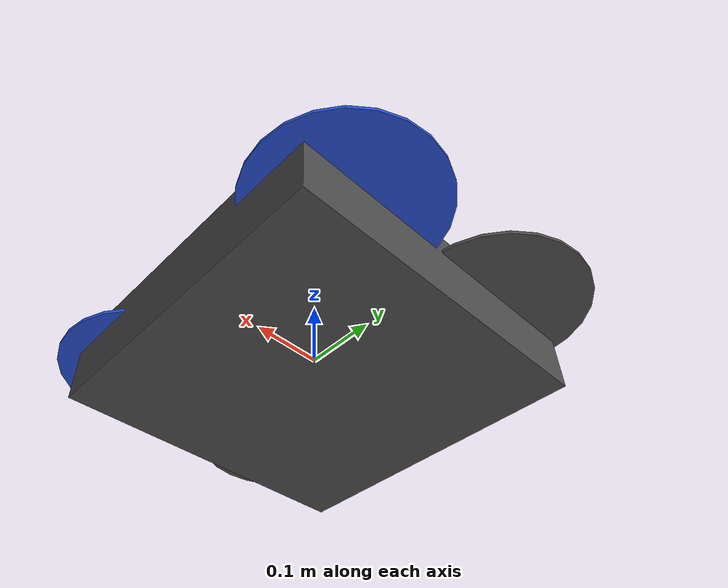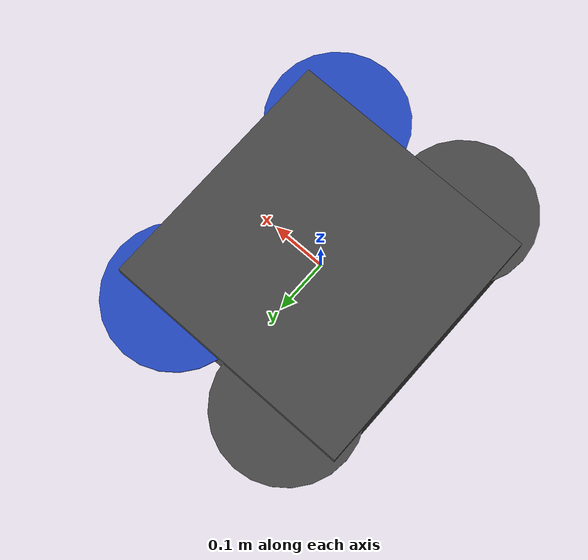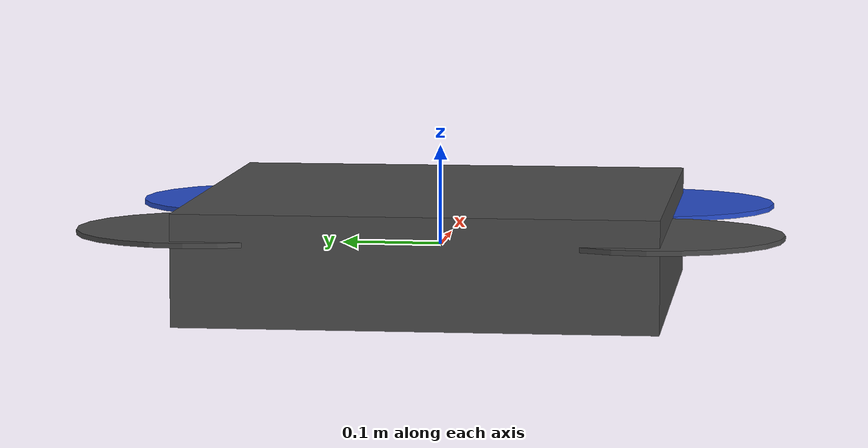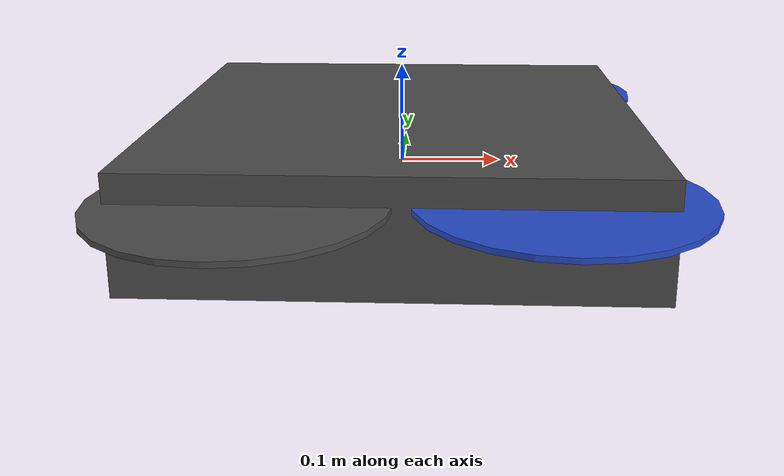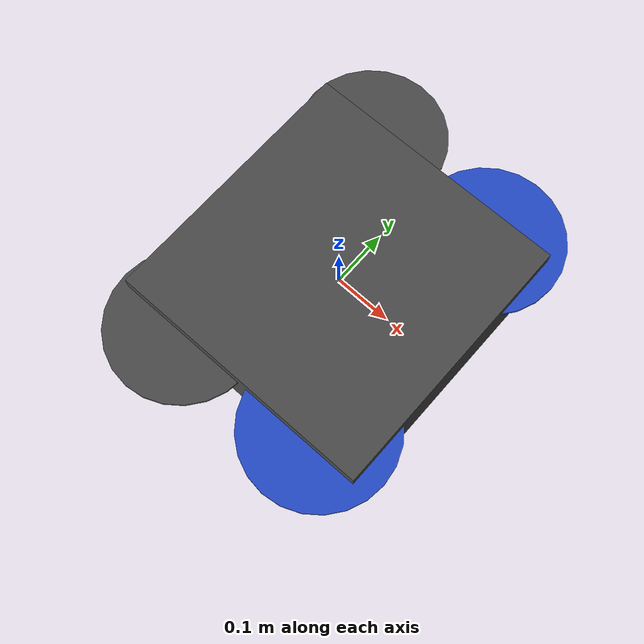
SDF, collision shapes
<sdf version='1.6'>
  <model name='iris'>
    <link name='base_link'>
      <pose frame=''>0.0 0.0 0 0 -0 3.14</pose>   <!-- x,y,z  roll,pitch,yaw -->
      <inertial>
        <pose frame=''>0 0 0 0 -0 0</pose>
        <mass>1.5</mass>
        <inertia>
          <ixx>0.029125</ixx>
          <ixy>0</ixy>
          <ixz>0</ixz>
          <iyy>0.029125</iyy>
          <iyz>0</iyz>
          <izz>0.055225</izz>
        </inertia>
      </inertial>
      <collision name='base_link_inertia_collision'>
        <pose frame=''>0 0 0 0 -0 0.0</pose>
        <geometry>
          <box>
            <size>0.47 0.47 0.11</size>
          </box>
        </geometry>
        <surface>
          <contact>
            <ode>
              <min_depth>0.001</min_depth>
              <max_vel>0</max_vel>
            </ode>
          </contact>
          <friction>
            <ode/>
          </friction>
        </surface>
      </collision>
      <visual name='base_link_inertia_visual'>
        <pose frame=''>0 0 0 0 -0 0.0</pose>
        <geometry>
          <mesh>
            <scale>1 1 1</scale>
            <uri>model://iris_test/meshes/iris.stl</uri>
          </mesh>
        </geometry>
        <material>
          <script>
            <name>Gazebo/DarkGrey</name>
            <uri>file://media/materials/scripts/gazebo.material</uri>
          </script>
        </material>
      </visual>
      <gravity>1</gravity>
      <velocity_decay/>
    </link>
    <link name='/imu_link'>
      <pose frame=''>0 0 0 0 -0 3.14</pose>
      <inertial>
        <pose frame=''>0 0 0 0 -0 0</pose>
        <mass>0.015</mass>
        <inertia>
          <ixx>1e-05</ixx>
          <ixy>0</ixy>
          <ixz>0</ixz>
          <iyy>1e-05</iyy>
          <iyz>0</iyz>
          <izz>1e-05</izz>
        </inertia>
      </inertial>
    </link>
    <joint name='/imu_joint' type='revolute'>
      <child>/imu_link</child>
      <parent>base_link</parent>
      <axis>
        <xyz>1 0 0</xyz>
        <limit>
          <lower>0</lower>
          <upper>0</upper>
          <effort>0</effort>
          <velocity>0</velocity>
        </limit>
        <dynamics>
          <spring_reference>0</spring_reference>
          <spring_stiffness>0</spring_stiffness>
        </dynamics>
        <use_parent_model_frame>1</use_parent_model_frame>
      </axis>
    </joint>
    <link name='rotor_0'>
      <pose frame=''>0.142 -0.206 0.026 0 -0 0</pose>
      <inertial>
        <pose frame=''>0 0 0 0 -0 0</pose>
        <mass>0.005</mass>
        <inertia>
          <ixx>9.75e-07</ixx>
          <ixy>0</ixy>
          <ixz>0</ixz>
          <iyy>0.000273104</iyy>
          <iyz>0</iyz>
          <izz>0.000274004</izz>
        </inertia>
      </inertial>
      <collision name='rotor_0_collision'>
        <pose frame=''>0 0 0 0 -0 0</pose>
        <geometry>
          <cylinder>
            <length>0.005</length>
            <radius>0.128</radius>
          </cylinder>
        </geometry>
        <surface>
          <contact>
            <ode/>
          </contact>
          <friction>
            <ode/>
          </friction>
        </surface>
      </collision>
      <visual name='rotor_0_visual'>
        <pose frame=''>0 0 0 0 -0 0</pose>
        <geometry>
          <mesh>
            <scale>1 1 1</scale>
            <uri>model://iris_test/meshes/iris_prop_ccw.dae</uri>
          </mesh>
        </geometry>
        <material>
          <script>
            <name>Gazebo/Blue</name>
            <uri>file://media/materials/scripts/gazebo.material</uri>
          </script>
        </material>
      </visual>
      <gravity>1</gravity>
      <velocity_decay/>
    </link>
    <joint name='rotor_0_joint' type='revolute'>
      <child>rotor_0</child>
      <parent>base_link</parent>
      <axis>
        <xyz>0 0 1</xyz>
        <limit>
          <lower>-1e+16</lower>
          <upper>1e+16</upper>
        </limit>
        <dynamics>
          <spring_reference>0</spring_reference>
          <spring_stiffness>0</spring_stiffness>
        </dynamics>
        <use_parent_model_frame>1</use_parent_model_frame>
      </axis>
    </joint>
    <link name='rotor_1'>
      <pose frame=''>0.140 0.202 0.026 0 -0 0</pose>
      <inertial>
        <pose frame=''>0 0 0 0 -0 0</pose>
        <mass>0.005</mass>
        <inertia>
          <ixx>9.75e-07</ixx>
          <ixy>0</ixy>
          <ixz>0</ixz>
          <iyy>0.000273104</iyy>
          <iyz>0</iyz>
          <izz>0.000274004</izz>
        </inertia>
      </inertial>
      <collision name='rotor_1_collision'>
        <pose frame=''>0 0 0 0 -0 0</pose>
        <geometry>
          <cylinder>
            <length>0.005</length>
            <radius>0.128</radius>
          </cylinder>
        </geometry>
        <surface>
          <contact>
            <ode/>
          </contact>
          <friction>
            <ode/>
          </friction>
        </surface>
      </collision>
      <visual name='rotor_1_visual'>
        <pose frame=''>0 0 0 0 -0 0</pose>
        <geometry>
          <mesh>
            <scale>1 1 1</scale>
            <uri>model://iris_test/meshes/iris_prop_cw.dae</uri>
          </mesh>
        </geometry>
        <material>
          <script>
            <name>Gazebo/Blue</name>
            <uri>file://media/materials/scripts/gazebo.material</uri>
          </script>
        </material>
      </visual>
      <gravity>1</gravity>
      <velocity_decay/>
    </link>
    <joint name='rotor_1_joint' type='revolute'>
      <child>rotor_1</child>
      <parent>base_link</parent>
      <axis>
        <xyz>0 0 1</xyz>
        <limit>
          <lower>-1e+16</lower>
          <upper>1e+16</upper>
        </limit>
        <dynamics>
          <spring_reference>0</spring_reference>
          <spring_stiffness>0</spring_stiffness>
        </dynamics>
        <use_parent_model_frame>1</use_parent_model_frame>
      </axis>
    </joint>
    <link name='rotor_2'>
      <pose frame=''>-0.120 0.220 0.026 0 -0 0</pose>
      <inertial>
        <pose frame=''>0 0 0 0 -0 0</pose>
        <mass>0.005</mass>
        <inertia>
          <ixx>9.75e-07</ixx>
          <ixy>0</ixy>
          <ixz>0</ixz>
          <iyy>0.000273104</iyy>
          <iyz>0</iyz>
          <izz>0.000274004</izz>
        </inertia>
      </inertial>
      <collision name='rotor_2_collision'>
        <pose frame=''>0 0 0 0 -0 0</pose>
        <geometry>
          <cylinder>
            <length>0.005</length>
            <radius>0.128</radius>
          </cylinder>
        </geometry>
        <surface>
          <contact>
            <ode/>
          </contact>
          <friction>
            <ode/>
          </friction>
        </surface>
      </collision>
      <visual name='rotor_2_visual'>
        <pose frame=''>0 0 0 0 -0 0</pose>
        <geometry>
          <mesh>
            <scale>1 1 1</scale>
            <uri>model://iris_test/meshes/iris_prop_ccw.dae</uri>
          </mesh>
        </geometry>
        <material>
          <script>
            <name>Gazebo/DarkGrey</name>
            <uri>file://media/materials/scripts/gazebo.material</uri>
          </script>
        </material>
      </visual>
      <gravity>1</gravity>
      <velocity_decay/>
    </link>
    <joint name='rotor_2_joint' type='revolute'>
      <child>rotor_2</child>
      <parent>base_link</parent>
      <axis>
        <xyz>0 0 1</xyz>
        <limit>
          <lower>-1e+16</lower>
          <upper>1e+16</upper>
        </limit>
        <dynamics>
          <spring_reference>0</spring_reference>
          <spring_stiffness>0</spring_stiffness>
        </dynamics>
        <use_parent_model_frame>1</use_parent_model_frame>
      </axis>
    </joint>
    <link name='rotor_3'>
      <pose frame=''>-0.125 -0.223 0.026 0 -0 0</pose>
      <inertial>
        <pose frame=''>0 0 0 0 -0 0</pose>
        <mass>0.005</mass>
        <inertia>
          <ixx>9.75e-07</ixx>
          <ixy>0</ixy>
          <ixz>0</ixz>
          <iyy>0.000273104</iyy>
          <iyz>0</iyz>
          <izz>0.000274004</izz>
        </inertia>
      </inertial>
      <collision name='rotor_3_collision'>
        <pose frame=''>0 0 0 0 -0 0</pose>
        <geometry>
          <cylinder>
            <length>0.005</length>
            <radius>0.128</radius>
          </cylinder>
        </geometry>
        <surface>
          <contact>
            <ode/>
          </contact>
          <friction>
            <ode/>
          </friction>
        </surface>
      </collision>
      <visual name='rotor_3_visual'>
        <pose frame=''>0 0 0 0 -0 0</pose>
        <geometry>
          <mesh>
            <scale>1 1 1</scale>
            <uri>model://iris_test/meshes/iris_prop_cw.dae</uri>
          </mesh>
        </geometry>
        <material>
          <script>
            <name>Gazebo/DarkGrey</name>
            <uri>file://media/materials/scripts/gazebo.material</uri>
          </script>
        </material>
      </visual>
      <gravity>1</gravity>
      <velocity_decay/>
    </link>
    <joint name='rotor_3_joint' type='revolute'>
      <child>rotor_3</child>
      <parent>base_link</parent>
      <axis>
        <xyz>0 0 1</xyz>
        <limit>
          <lower>-1e+16</lower>
          <upper>1e+16</upper>
        </limit>
        <dynamics>
          <spring_reference>0</spring_reference>
          <spring_stiffness>0</spring_stiffness>
        </dynamics>
        <use_parent_model_frame>1</use_parent_model_frame>
      </axis>
    </joint>

    <plugin name='front_right_motor_model' filename='librotor_plugin.so'>
      <robotNamespace/>
      <jointName>rotor_0_joint</jointName>
      <linkName>rotor_0</linkName>
      <motorNumber>0</motorNumber>
      <turningDirection>ccw</turningDirection>
      <rotorDragCoefficient>0.000175</rotorDragCoefficient>
      <rollingMomentCoefficient>1e-06</rollingMomentCoefficient>
      <maxRotVelocity>1100</maxRotVelocity>
      <motorConstant>8.54858e-06</motorConstant>
      <momentConstant>0.06</momentConstant>
      <timeConstantUp>0.0125</timeConstantUp>
      <timeConstantDown>0.025</timeConstantDown>
      <motorSpeedPubTopic>/motor_speed/0</motorSpeedPubTopic>
      <rotorVelocitySlowdownSim>10</rotorVelocitySlowdownSim>
    </plugin>
    <plugin name='front_left_motor_model' filename='librotor_plugin.so'>
      <robotNamespace/>
      <jointName>rotor_1_joint</jointName>
      <linkName>rotor_1</linkName>
      <motorNumber>1</motorNumber>
      <turningDirection>cw</turningDirection>
      <rotorDragCoefficient>0.000175</rotorDragCoefficient>
      <rollingMomentCoefficient>1e-06</rollingMomentCoefficient>
      <maxRotVelocity>1100</maxRotVelocity>                           <!-- units: rad/s -->
      <motorConstant>8.54858e-06</motorConstant>
      <momentConstant>0.06</momentConstant>
      <timeConstantUp>0.0125</timeConstantUp>
      <timeConstantDown>0.025</timeConstantDown>                      <!-- I don't think this is actually used -->
      <motorSpeedPubTopic>/motor_speed/1</motorSpeedPubTopic>
      <rotorVelocitySlowdownSim>10</rotorVelocitySlowdownSim>
    </plugin>
    <plugin name='back_left_motor_model' filename='librotor_plugin.so'>
      <robotNamespace/>
      <jointName>rotor_2_joint</jointName>
      <linkName>rotor_2</linkName>
      <motorNumber>2</motorNumber>
      <turningDirection>ccw</turningDirection>
      <rotorDragCoefficient>0.000175</rotorDragCoefficient>
      <rollingMomentCoefficient>1e-06</rollingMomentCoefficient>
      <maxRotVelocity>1100</maxRotVelocity>                           <!-- units: rad/s -->
      <motorConstant>8.54858e-06</motorConstant>
      <momentConstant>0.06</momentConstant>
      <timeConstantUp>0.0125</timeConstantUp>
      <timeConstantDown>0.025</timeConstantDown>                      <!-- I don't think this is actually used -->
      <motorSpeedPubTopic>/motor_speed/2</motorSpeedPubTopic>
      <rotorVelocitySlowdownSim>10</rotorVelocitySlowdownSim>
    </plugin>
    <plugin name='back_right_motor_model' filename='librotor_plugin.so'>
      <robotNamespace/>
      <jointName>rotor_3_joint</jointName>
      <linkName>rotor_3</linkName>
      <motorNumber>3</motorNumber>
      <turningDirection>cw</turningDirection>
      <rotorDragCoefficient>0.000175</rotorDragCoefficient>
      <rollingMomentCoefficient>1e-06</rollingMomentCoefficient>
      <maxRotVelocity>1100</maxRotVelocity>                           <!-- units: rad/s -->
      <motorConstant>8.54858e-06</motorConstant>
      <momentConstant>0.06</momentConstant>
      <timeConstantUp>0.0125</timeConstantUp>
      <timeConstantDown>0.025</timeConstantDown>                      <!-- I don't think this is actually used -->
      <motorSpeedPubTopic>/motor_speed/3</motorSpeedPubTopic>
      <rotorVelocitySlowdownSim>10</rotorVelocitySlowdownSim>
    </plugin>

  </model>
</sdf>
